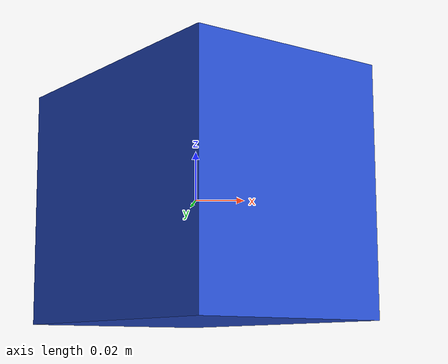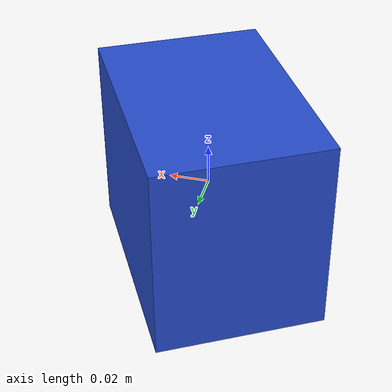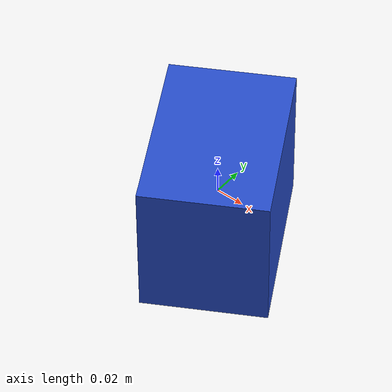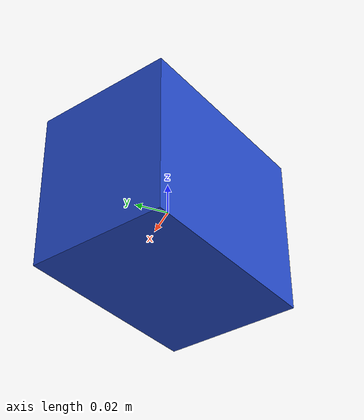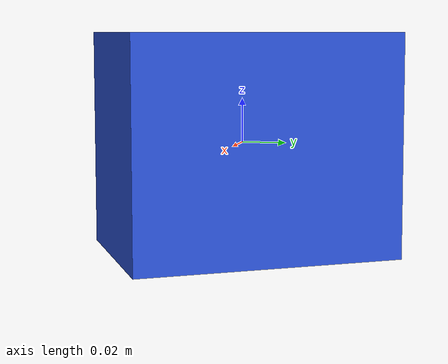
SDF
<sdf version="1.6"><model name="model_19"><static>true</static><link name="link"><pose>0 0 0 0 0 0.5222654994393294</pose><collision name="collision"><geometry><box><size>0.08436675957018074 0.1208208849143441 0.1</size></box></geometry></collision><visual name="visual"><geometry><box><size>0.08436675957018074 0.1208208849143441 0.1</size></box></geometry><material><script><name>Gazebo/Blue</name><uri>file://media/materials/scripts/gazebo.material</uri></script></material></visual></link></model></sdf>
